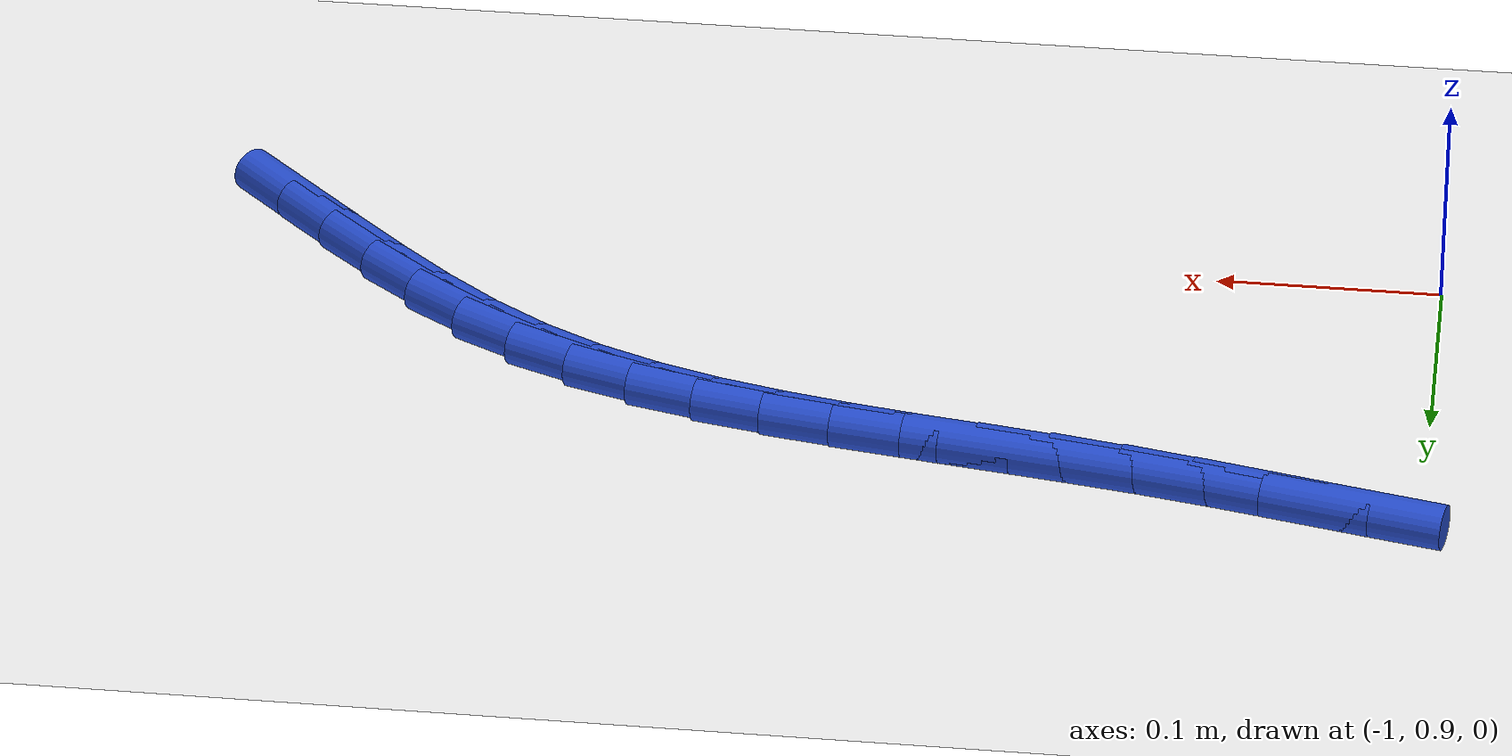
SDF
<sdf version="1.6">
 <world name="default">
  <model name="ground_plane">
   <static>1</static>
   <link name="link">
    <collision name="collision">
     <geometry><plane><normal>0 0 1</normal><size>100 100</size></plane></geometry>
     <surface><friction><ode><mu>100</mu><mu2>50</mu2></ode></friction></surface>
    </collision>
    <visual name="visual">
     <cast_shadows>0</cast_shadows>
     <geometry><plane><normal>0 0 1</normal><size>100 100</size></plane></geometry>
     <material>
      <script><uri>file://media/materials/scripts/gazebo.material</uri><name>Gazebo/WhiteGlow</name></script>
     </material>
    </visual>
   </link>
  </model>
  <model name="line">
   <link name="link_35">
    <pose>-0.48898790971873035 0.9001581549749372 0.01 0 1.57 -0.7409505809943913</pose>
    <collision name="collision">
     <geometry><cylinder><radius>0.01</radius><length>0.08</length></cylinder></geometry>
    </collision>
    <visual name="visual">
     <material>
      <script><name>Gazebo/Blue</name><uri>file://media/materials/scripts/gazebo.material</uri></script>
     </material>
     <geometry><cylinder><radius>0.01</radius><length>0.08</length></cylinder></geometry>
    </visual>
   </link>
   <link name="link_36">
    <pose>-0.5121005394377249 0.9213023781539208 0.01 0 1.57 -0.7325039884930652</pose>
    <collision name="collision">
     <geometry><cylinder><radius>0.01</radius><length>0.08</length></cylinder></geometry>
    </collision>
    <visual name="visual">
     <material>
      <script><name>Gazebo/Blue</name><uri>file://media/materials/scripts/gazebo.material</uri></script>
     </material>
     <geometry><cylinder><radius>0.01</radius><length>0.08</length></cylinder></geometry>
    </visual>
   </link>
   <link name="link_37">
    <pose>-0.5351809080485513 0.942061716638204 0.01 0 1.57 -0.7005743832918859</pose>
    <collision name="collision">
     <geometry><cylinder><radius>0.01</radius><length>0.08</length></cylinder></geometry>
    </collision>
    <visual name="visual">
     <material>
      <script><name>Gazebo/Blue</name><uri>file://media/materials/scripts/gazebo.material</uri></script>
     </material>
     <geometry><cylinder><radius>0.01</radius><length>0.08</length></cylinder></geometry>
    </visual>
   </link>
   <link name="link_38">
    <pose>-0.5585975434790101 0.9618082800132266 0.01 0 1.57 -0.6438943417208032</pose>
    <collision name="collision">
     <geometry><cylinder><radius>0.01</radius><length>0.08</length></cylinder></geometry>
    </collision>
    <visual name="visual">
     <material>
      <script><name>Gazebo/Blue</name><uri>file://media/materials/scripts/gazebo.material</uri></script>
     </material>
     <geometry><cylinder><radius>0.01</radius><length>0.08</length></cylinder></geometry>
    </visual>
   </link>
   <link name="link_39">
    <pose>-0.5827189736569023 0.9799141778644277 0.01 0 1.57 -0.5611820949017046</pose>
    <collision name="collision">
     <geometry><cylinder><radius>0.01</radius><length>0.08</length></cylinder></geometry>
    </collision>
    <visual name="visual">
     <material>
      <script><name>Gazebo/Blue</name><uri>file://media/materials/scripts/gazebo.material</uri></script>
     </material>
     <geometry><cylinder><radius>0.01</radius><length>0.08</length></cylinder></geometry>
    </visual>
   </link>
   <link name="link_40">
    <pose>-0.6079137199781708 0.9957515322394921 0.01 0 1.57 -0.45967685903800887</pose>
    <collision name="collision">
     <geometry><cylinder><radius>0.01</radius><length>0.08</length></cylinder></geometry>
    </collision>
    <visual name="visual">
     <material>
      <script><name>Gazebo/Blue</name><uri>file://media/materials/scripts/gazebo.material</uri></script>
     </material>
     <geometry><cylinder><radius>0.01</radius><length>0.08</length></cylinder></geometry>
    </visual>
   </link>
   <link name="link_41">
    <pose>-0.6344481752794612 1.008887318051416 0.01 0 1.57 -0.36731859572606823</pose>
    <collision name="collision">
     <geometry><cylinder><radius>0.01</radius><length>0.08</length></cylinder></geometry>
    </collision>
    <visual name="visual">
     <material>
      <script><name>Gazebo/Blue</name><uri>file://media/materials/scripts/gazebo.material</uri></script>
     </material>
     <geometry><cylinder><radius>0.01</radius><length>0.08</length></cylinder></geometry>
    </visual>
   </link>
   <link name="link_42">
    <pose>-0.6622281200494722 1.0195765288217744 0.01 0 1.57 -0.2912631749124547</pose>
    <collision name="collision">
     <geometry><cylinder><radius>0.01</radius><length>0.08</length></cylinder></geometry>
    </collision>
    <visual name="visual">
     <material>
      <script><name>Gazebo/Blue</name><uri>file://media/materials/scripts/gazebo.material</uri></script>
     </material>
     <geometry><cylinder><radius>0.01</radius><length>0.08</length></cylinder></geometry>
    </visual>
   </link>
   <link name="link_43">
    <pose>-0.6910797817531756 1.0282259386781156 0.01 0 1.57 -0.23161536392953921</pose>
    <collision name="collision">
     <geometry><cylinder><radius>0.01</radius><length>0.08</length></cylinder></geometry>
    </collision>
    <visual name="visual">
     <material>
      <script><name>Gazebo/Blue</name><uri>file://media/materials/scripts/gazebo.material</uri></script>
     </material>
     <geometry><cylinder><radius>0.01</radius><length>0.08</length></cylinder></geometry>
    </visual>
   </link>
   <link name="link_44">
    <pose>-0.7208293878555434 1.0352423217479876 0.01 0 1.57 -0.1877655126679093</pose>
    <collision name="collision">
     <geometry><cylinder><radius>0.01</radius><length>0.08</length></cylinder></geometry>
    </collision>
    <visual name="visual">
     <material>
      <script><name>Gazebo/Blue</name><uri>file://media/materials/scripts/gazebo.material</uri></script>
     </material>
     <geometry><cylinder><radius>0.01</radius><length>0.08</length></cylinder></geometry>
    </visual>
   </link>
   <link name="link_45">
    <pose>-0.751303165821547 1.0410324521589378 0.01 0 1.57 -0.15886844957968024</pose>
    <collision name="collision">
     <geometry><cylinder><radius>0.01</radius><length>0.08</length></cylinder></geometry>
    </collision>
    <visual name="visual">
     <material>
      <script><name>Gazebo/Blue</name><uri>file://media/materials/scripts/gazebo.material</uri></script>
     </material>
     <geometry><cylinder><radius>0.01</radius><length>0.08</length></cylinder></geometry>
    </visual>
   </link>
   <link name="link_46">
    <pose>-0.7823273431161581 1.0460031040385152 0.01 0 1.57 -0.14414709625055966</pose>
    <collision name="collision">
     <geometry><cylinder><radius>0.01</radius><length>0.08</length></cylinder></geometry>
    </collision>
    <visual name="visual">
     <material>
      <script><name>Gazebo/Blue</name><uri>file://media/materials/scripts/gazebo.material</uri></script>
     </material>
     <geometry><cylinder><radius>0.01</radius><length>0.08</length></cylinder></geometry>
    </visual>
   </link>
   <link name="link_47">
    <pose>-0.8137281472043489 1.0505610515142672 0.01 0 1.57 -0.14305067615243347</pose>
    <collision name="collision">
     <geometry><cylinder><radius>0.01</radius><length>0.08</length></cylinder></geometry>
    </collision>
    <visual name="visual">
     <material>
      <script><name>Gazebo/Blue</name><uri>file://media/materials/scripts/gazebo.material</uri></script>
     </material>
     <geometry><cylinder><radius>0.01</radius><length>0.08</length></cylinder></geometry>
    </visual>
   </link>
   <link name="link_48">
    <pose>-0.8453318055510912 1.0551130687137424 0.01 0 1.57 -0.1553128937771225</pose>
    <collision name="collision">
     <geometry><cylinder><radius>0.01</radius><length>0.08</length></cylinder></geometry>
    </collision>
    <visual name="visual">
     <material>
      <script><name>Gazebo/Blue</name><uri>file://media/materials/scripts/gazebo.material</uri></script>
     </material>
     <geometry><cylinder><radius>0.01</radius><length>0.08</length></cylinder></geometry>
    </visual>
   </link>
   <link name="link_49">
    <pose>-0.8769645456213562 1.0600659297644883 0.01 0 1.57 -0.17925850150893474</pose>
    <collision name="collision">
     <geometry><cylinder><radius>0.01</radius><length>0.08</length></cylinder></geometry>
    </collision>
    <visual name="visual">
     <material>
      <script><name>Gazebo/Blue</name><uri>file://media/materials/scripts/gazebo.material</uri></script>
     </material>
     <geometry><cylinder><radius>0.01</radius><length>0.08</length></cylinder></geometry>
    </visual>
   </link>
   <link name="link_50">
    <pose>-0.9084627931063454 1.0657735249909477 0.01 0 1.57 -0.19931838487703935</pose>
    <collision name="collision">
     <geometry><cylinder><radius>0.01</radius><length>0.08</length></cylinder></geometry>
    </collision>
    <visual name="visual">
     <material>
      <script><name>Gazebo/Blue</name><uri>file://media/materials/scripts/gazebo.material</uri></script>
     </material>
     <geometry><cylinder><radius>0.01</radius><length>0.08</length></cylinder></geometry>
    </visual>
   </link>
   <link name="link_51">
    <pose>-0.9397583349719058 1.0720952404028772 0.01 0 1.57 -0.20696854054746447</pose>
    <collision name="collision">
     <geometry><cylinder><radius>0.01</radius><length>0.08</length></cylinder></geometry>
    </collision>
    <visual name="visual">
     <material>
      <script><name>Gazebo/Blue</name><uri>file://media/materials/scripts/gazebo.material</uri></script>
     </material>
     <geometry><cylinder><radius>0.01</radius><length>0.08</length></cylinder></geometry>
    </visual>
   </link>
   <link name="link_52">
    <pose>-0.9708350040785989 1.0786205734248349 0.01 0 1.57 -0.20198318390520156</pose>
    <collision name="collision">
     <geometry><cylinder><radius>0.01</radius><length>0.08</length></cylinder></geometry>
    </collision>
    <visual name="visual">
     <material>
      <script><name>Gazebo/Blue</name><uri>file://media/materials/scripts/gazebo.material</uri></script>
     </material>
     <geometry><cylinder><radius>0.01</radius><length>0.08</length></cylinder></geometry>
    </visual>
   </link>
  </model>
 </world>
</sdf>
